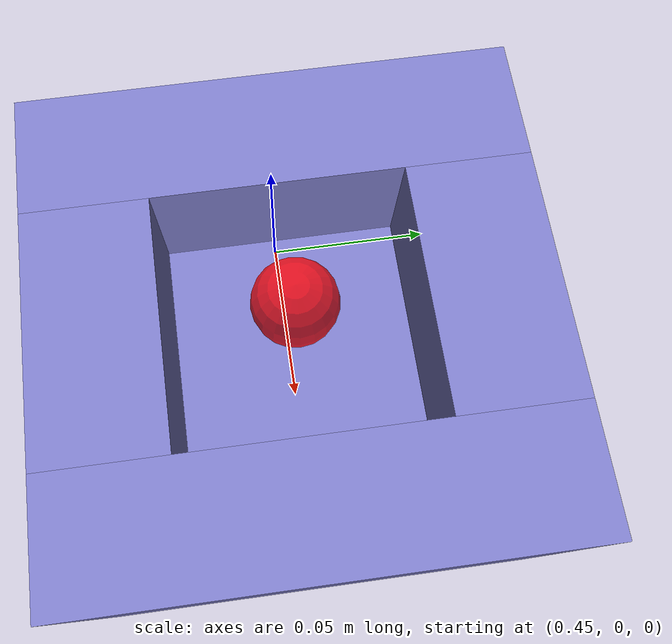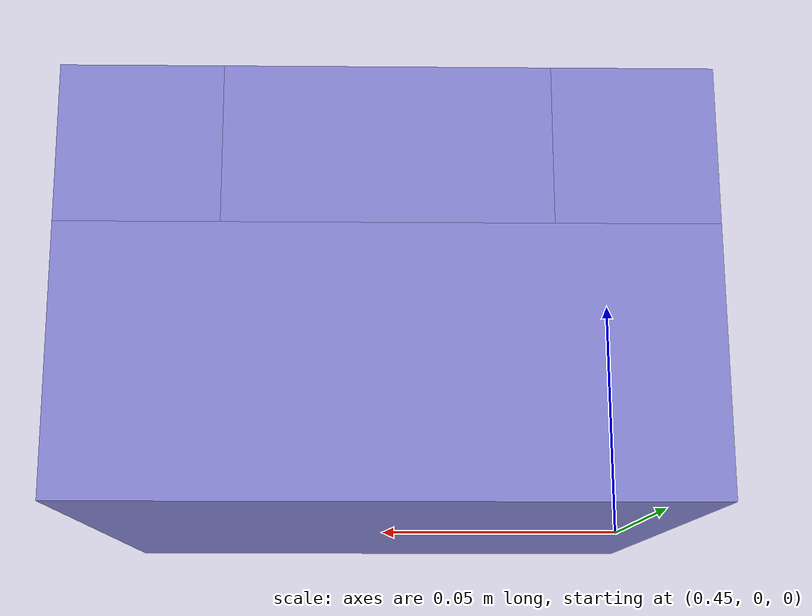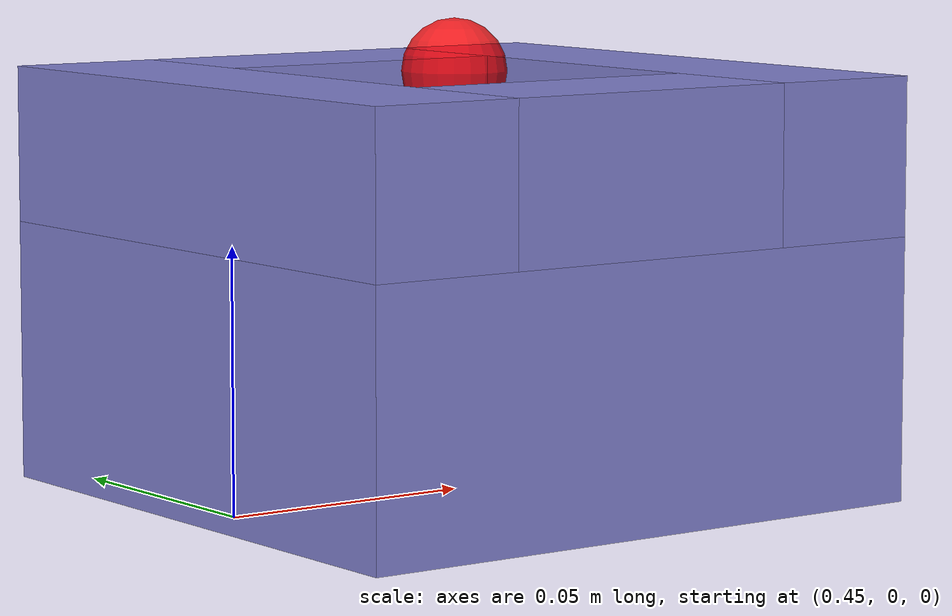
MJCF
<mujoco model="peg_socket">
  <worldbody>
    <body name="peg_socket" pos="0.5 0 0.025">
      <!-- Outer base block -->
      <geom name="socket_base" type="box" size="0.06 0.06 0.025"
            mass="0.5" rgba="0.5 0.5 0.8 1" condim="4" friction="1 0.1 0.1"/>
      <!-- Raised collar around the hole (approximated with 4 surrounding boxes) -->
      <geom name="socket_collar_x1" type="box" size="0.015 0.06 0.015" pos=" 0.045 0 0.04"
            mass="0.05" rgba="0.5 0.5 0.8 1"/>
      <geom name="socket_collar_x2" type="box" size="0.015 0.06 0.015" pos="-0.045 0 0.04"
            mass="0.05" rgba="0.5 0.5 0.8 1"/>
      <geom name="socket_collar_y1" type="box" size="0.03 0.015 0.015" pos="0  0.045 0.04"
            mass="0.05" rgba="0.5 0.5 0.8 1"/>
      <geom name="socket_collar_y2" type="box" size="0.03 0.015 0.015" pos="0 -0.045 0.04"
            mass="0.05" rgba="0.5 0.5 0.8 1"/>
      <!-- Hole marker site: where the peg TCP should reach -->
      <site name="socket_hole" pos="0 0 0.055" size="0.01" rgba="1 0 0 0.8"/>
    </body>
    <!-- Multi-angle cameras for peg_insert -->
    <camera name="overview" pos="0.0 -1.2 1.4" euler="55 0 0"/>
    <camera name="side" pos="-1.4 0.0 0.8" euler="0 -75 0"/>
    <camera name="top_down" pos="0.0 0.0 2.2" euler="90 0 0"/>
    <!-- Wrist camera approximates TCP view (static until MJCF body-attachment upgrade). -->
    <camera name="wrist" mode="fixed" pos="0.5 0.0 0.35" euler="90 0 180"/>
  </worldbody>
</mujoco>
